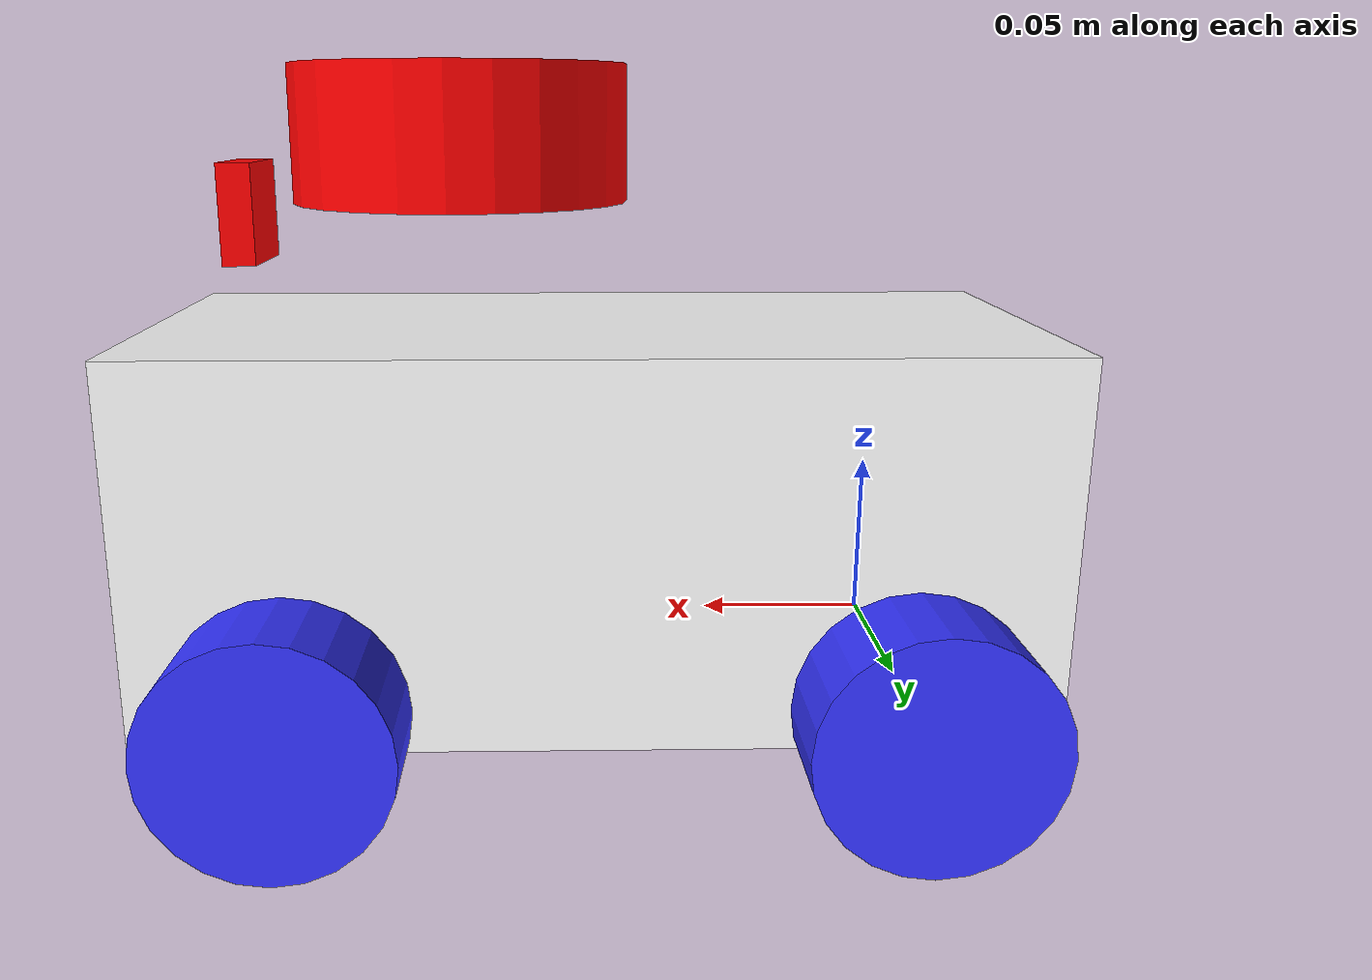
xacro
<?xml version="1.0"?>
<robot xmlns:xacro="http://www.ros.org/wiki/xacro" name="robot">

    <xacro:arg name="use_ros2_control" default="true" />
    <xacro:arg name="sim_mode" default="false" />
    <xacro:arg name="drive_model" default="diff" />   <!-- diff | ackermann -->

    <xacro:include filename="robot_core.xacro" />

    <xacro:if value="$(arg sim_mode)">
        <xacro:include filename="gz_sensors.xacro" />
        <xacro:include filename="gz_joint_state.xacro" />
        <xacro:if value="${'$(arg drive_model)' == 'ackermann'}">
            <xacro:include filename="gz_ackermann.xacro" />
        </xacro:if>
        <xacro:unless value="${'$(arg drive_model)' == 'ackermann'}">
            <xacro:include filename="gz_diff_drive.xacro" />
        </xacro:unless>
    </xacro:if>

    <xacro:unless value="$(arg sim_mode)">
        <xacro:include filename="ros2_control.xacro" />
        <xacro:include filename="lidar.xacro" />
        <xacro:include filename="imu.xacro" />
        <xacro:include filename="camera.xacro" />
    </xacro:unless>
</robot>

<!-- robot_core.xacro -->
<robot xmlns:xacro="http://www.ros.org/wiki/xacro">
    <xacro:include filename="inertial_macros.xacro" />

    <!-- COLORS -->
    <material name="white">
        <color rgba="1.0 1.0 1.0 1.0" />
    </material>

    <material name="orange">
        <color rgba="1.0 0.3 0.1 1.0" />
    </material>

    <material name="blue">
        <color rgba="0.2 0.2 1.0 1.0" />
    </material>

    <material name="black">
        <color rgba="0.0 0.0 0.0 1.0" />
    </material>

    <material name="red">
        <color rgba="1.0 0.0 0.0 1.0" />
    </material>

    <material name="invisible">
        <color rgba="1.0 1.0 1.0 0.0" />
    </material>

    <!-- VARIABLES-->
    <xacro:property name="chassis_length"
        value="0.27" />
    <xacro:property name="chassis_width" value="0.1205" />
    <xacro:property
        name="chassis_height" value="0.115" />
    <xacro:property name="chassis_to_back_wheels_distance"
        value="0.048" />
    <xacro:property name="chassis_mass" value="1.1" />
    <xacro:property
        name="rear_wheel_track" value="0.175" />
    <xacro:property name="front_wheel_track"
        value="0.11" />
    <xacro:property
        name="wheel_radius" value="0.034" />
    <xacro:property name="wheel_length" value="0.0295" />
    <xacro:property
        name="wheel_mass" value="0.05" />
    <xacro:property name="wheel_base" value="0.172" />

    <!-- BASE LINK -->
    <link
        name="base_link" />

    <!-- BASE_FOOTPRINT LINK --><joint name="base_footprint_joint" type="fixed">
        <parent link="base_link" />
        <child link="base_footprint" />
        <origin xyz="0 0 0" rpy="0 0 0" />
    </joint>

    <link name="base_footprint" />

    <!-- CHASSIS LINK -->
    <joint
        name="chassis_joint" type="fixed">
        <parent link="base_link" />
        <child link="chassis" />
        <origin xyz="-${chassis_to_back_wheels_distance} 0.0 0.0" />
    </joint>
    <link name="chassis">
        <visual>
            <origin xyz="${chassis_length/2} 0.0 ${chassis_height/3}" />
            <geometry>
                <box size="${chassis_length} ${chassis_width} ${chassis_height}" />
            </geometry>
            <material name="white" />
        </visual>
        <collision>
            <origin xyz="${chassis_length/2} 0.0 ${chassis_height/3}" />
            <geometry>
                <box size="${chassis_length} ${chassis_width} ${chassis_height}" />
            </geometry>
        </collision>
        <xacro:inertial_box mass="${chassis_mass}" x="${chassis_length}" y="${chassis_width}"
            z="${chassis_height}">
            <origin xyz="0.0 0 0.0" />
        </xacro:inertial_box>
    </link>

    <gazebo
        reference="chassis">
        <material>Gazebo/White</material>
    </gazebo>

    <!-- REAR LEFT WHEEL LINK -->
    <joint name="rear_left_wheel_joint"
        type="continuous">
        <parent link="base_link" />
        <child link="rear_left_wheel" />
        <origin xyz="0 ${rear_wheel_track/2} 0" rpy="-${pi/2} 0 0" />
        <axis xyz="0 0 1" />
    </joint>

    <link name="rear_left_wheel">
        <visual>
            <geometry>
                <cylinder radius="${wheel_radius}" length="${wheel_length}" />
            </geometry>
            <material name="blue" />
        </visual>
        <collision>
            <geometry>
                <sphere radius="${wheel_radius}" />
            </geometry>
        </collision>
        <xacro:inertial_cylinder mass="${wheel_mass}" length="${wheel_length}"
            radius="${wheel_radius}">
            <origin xyz="0 0 0" rpy="0 0 0" />
        </xacro:inertial_cylinder>
    </link>

    <gazebo
        reference="rear_left_wheel">
        <material>Gazebo/Blue</material>
    </gazebo>

    <!-- REAR RIGHT WHEEL LINK -->
    <joint name="rear_right_wheel_joint"
        type="continuous">
        <parent link="base_link" />
        <child link="rear_right_wheel" />
        <origin xyz="0 -${rear_wheel_track/2} 0" rpy="${pi/2} 0 0" />
        <axis xyz="0 0 -1" />
    </joint>

    <link name="rear_right_wheel">
        <visual>
            <geometry>
                <cylinder radius="${wheel_radius}" length="${wheel_length}" />
            </geometry>
            <material name="blue" />
        </visual>
        <collision>
            <geometry>
                <sphere radius="${wheel_radius}" />
            </geometry>
        </collision>
        <xacro:inertial_cylinder mass="${wheel_mass}" length="${wheel_length}"
            radius="${wheel_radius}">
            <origin xyz="0 0 0" rpy="0 0 0" />
        </xacro:inertial_cylinder>
    </link>

    <gazebo
        reference="rear_right_wheel">
        <material>Gazebo/Blue</material>
    </gazebo>

    <!-- FRONT RIGHT WHEEL LINK-->
    <joint name="front_right_wheel_joint"
        type="revolute">
        <parent link="base_link" />
        <child link="front_right_wheel" />
        <origin xyz="${wheel_base} -${front_wheel_track/2} 0" rpy="0 0 ${pi/2}" />
        <axis xyz="0 0 1" />
        <dynamics damping="0.2" />
        <limit lower="-0.454" upper="0.384" effort="100.0" velocity="2.0" />
    </joint>

    <link
        name="front_right_wheel">
        <visual>
            <origin xyz="-0.0325 0.0 0.0" rpy="${pi/2} 0 ${pi/2}" />
            <geometry>
                <cylinder radius="${wheel_radius}" length="${wheel_length}" />
            </geometry>
            <material name="blue" />
        </visual>
        <collision>
            <geometry>
                <sphere radius="${wheel_radius}" />
            </geometry>
        </collision>
        <xacro:inertial_cylinder mass="${wheel_mass}" length="${wheel_length}"
            radius="${wheel_radius}">
            <origin xyz="-0.0325 0.0 0" rpy="0 0 0" />
        </xacro:inertial_cylinder>
    </link>

    <!-- FRONT LEFT WHEEL LINK-->
    <joint
        name="front_left_wheel_joint" type="revolute">
        <parent link="base_link" />
        <child link="front_left_wheel" />
        <origin xyz="${wheel_base} ${front_wheel_track/2} 0" rpy="0 0 ${pi/2}" />
        <axis xyz="0 0 1" />
        <dynamics damping="0.2" />
        <limit lower="-0.384" upper="0.454" effort="100.0" velocity="2.0" />
    </joint>

    <link
        name="front_left_wheel">
        <visual>
            <origin xyz="0.0325 0.0 0.0" rpy="${pi/2} 0 ${pi/2}" />
            <geometry>
                <cylinder radius="${wheel_radius}" length="${wheel_length}" />
            </geometry>
            <material name="blue" />
        </visual>
        <collision>
            <geometry>
                <sphere radius="${wheel_radius}" />
            </geometry>
        </collision>
        <xacro:inertial_cylinder mass="${wheel_mass}" length="${wheel_length}"
            radius="${wheel_radius}">
            <origin xyz="0.0325 0.0 0.0" rpy="0 0 0" />
        </xacro:inertial_cylinder>
    </link>

    <gazebo
        reference="front_left_wheel">
        <material>Gazebo/Blue</material>
    </gazebo>

    <gazebo reference="front_left_wheel_joint">
        <material>Gazebo/Blue</material>
    </gazebo>
</robot>

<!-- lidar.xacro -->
<robot xmlns:xacro="http://www.ros.org/wiki/xacro" name="robot">
    <joint name="laser_joint" type="fixed">
        <parent link="chassis" />
        <child link="laser_frame" />
        <origin xyz="0.175 0.0 0.153" rpy="0.0 0.0 0.0" />
    </joint>

    <link name="laser_frame">
        <visual>
            <geometry>
                <cylinder radius="0.05" length="0.04" />
            </geometry>
            <material name="red" />
        </visual>
        <collision>
            <geometry>
                <sphere radius="0.05" />
            </geometry>
        </collision>
        <xacro:inertial_cylinder mass="0.1" length="0.04" radius="0.05">
            <origin xyz="0 0 0" rpy="0 0 0" />
        </xacro:inertial_cylinder>
    </link>

    <gazebo reference="laser_frame">
        <material>Gazebo/Red</material>

        <sensor name="laser" type="ray">
            <pose> 0 0 0 0 0 0 </pose>
            <visualize>false</visualize>
            <update_rate>10</update_rate>
            <ray>
                <scan>
                    <horizontal>
                        <samples>360</samples>
                        <min_angle>-3.14</min_angle>
                        <max_angle>3.14</max_angle>
                    </horizontal>
                </scan>
                <range>
                    <min>0.3</min>
                    <max>12</max>
                </range>
            </ray>
            <plugin name="laser_controller" filename="libgazebo_ros_ray_sensor.so">
                <ros>
                    <argument>~/out:=scan</argument>
                </ros>
                <output_type>sensor_msgs/LaserScan</output_type>
                <frame_name>laser_frame</frame_name>
            </plugin>
        </sensor>
    </gazebo>
</robot>

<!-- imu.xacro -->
<robot xmlns:xacro="http://www.ros.org/wiki/xacro" name="robot">
    <joint name="imu_joint" type="fixed">
        <parent link="chassis" />
        <child link="imu_link" />
        <origin xyz="0.208 0.03 0.0" rpy="0.0 0.0 0.0" />
    </joint>

    <link name="imu_link">
        <visual>
            <geometry>
                <cylinder radius="0.01" length="0.01" />
            </geometry>
            <material name="red" />
        </visual>
        <collision>
            <geometry>
                <sphere radius="0.01" />
            </geometry>
        </collision>
        <xacro:inertial_cylinder mass="0.1" length="0.01" radius="0.01">
            <origin xyz="0 0 0" rpy="0 0 0" />
        </xacro:inertial_cylinder>
    </link>
</robot>

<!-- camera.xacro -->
<robot xmlns:xacro="http://www.ros.org/wiki/xacro" name="robot">

    <joint name="camera_joint" type="fixed">
        <parent link="chassis" />
        <child link="camera_link" />
        <origin xyz="0.24 0.0 0.13" rpy="0.0 0.0 0.0" />
    </joint>

    <link name="camera_link">
        <visual>
            <geometry>
                <box size="0.01 0.03 0.03" />
            </geometry>
            <material name="red" />
        </visual>
    </link>
</robot>
